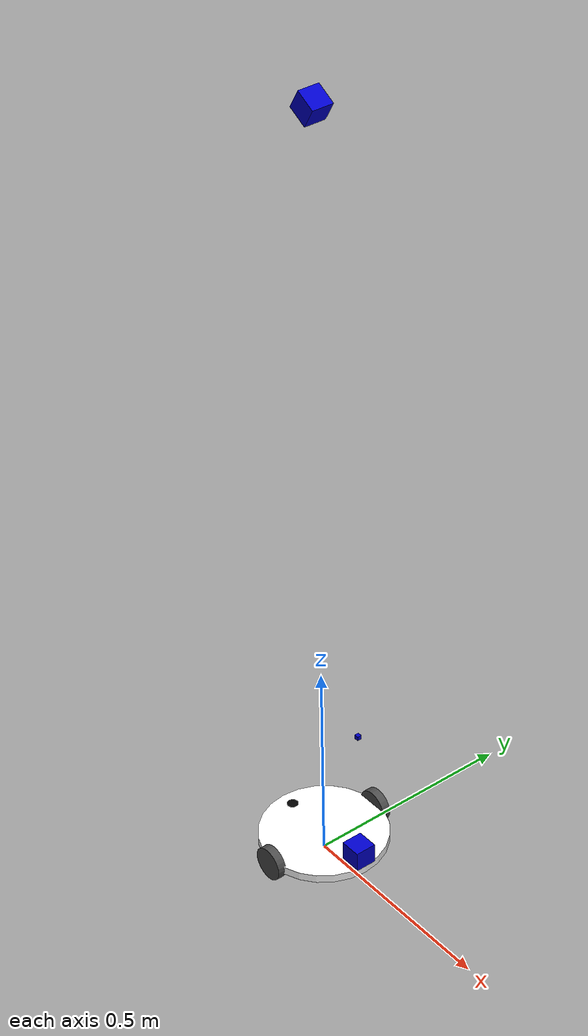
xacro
<?xml version="1.0"?>
<robot name="mando"
  xmlns:xacro="http://www.ros.org/wiki/xacro">
  <!-- Defining the colors used in this robot -->
  <material name="Black">
    <color rgba="0.0 0.0 0.0 1.0"/>
  </material>
  <material name="Red">
    <color rgba="0.8 0.0 0.0 1.0"/>
  </material>
  <material name="White">
    <color rgba="1.0 1.0 1.0 1.0"/>
  </material>
  <material name="Blue">
    <color rgba="0.0 0.0 0.8 1.0"/>
  </material>
  <!-- PROPERTY LIST -->
  <!--All units in m-kg-s-radians unit system -->
  <!-- Main body radius and height -->
  <!-- Main Body Cylinder base   -->
  <!-- in kg-->
  <!-- caster wheel radius and height -->
  <!-- caster wheel mass -->
  <!-- in kg-->
  <!-- caster wheel radius and height -->
  <!-- caster wheel mass -->
  <!-- in kg-->
  <!-- Wheels -->
  <!-- in kg-->
  <!-- Hokuyo Laser scanner -->
  <!-- Macro for calculating inertia of cylinder -->
  <!-- BASE-FOOTPRINT -->
  <!-- base_footprint is a fictitious link(frame) that is on the ground right below base_link origin -->
  <link name="base_footprint">
    <inertial>
      <mass value="0.0001"/>
      <origin xyz="0 0 0"/>
      <inertia ixx="0.0001" ixy="0.0" ixz="0.0" iyy="0.0001" iyz="0.0" izz="0.0001"/>
    </inertial>
    <visual>
      <origin rpy="0 0 0" xyz="0 0 0"/>
      <geometry>
        <box size="0.001 0.001 0.001"/>
      </geometry>
    </visual>
  </link>
  <joint name="base_footprint_joint" type="fixed">
    <origin rpy="0 0 0" xyz="0 0 0.04"/>
    <parent link="base_footprint"/>
    <child link="base_link"/>
  </joint>
  <!-- BASE-LINK -->
  <!--Actual body/chassis of the robot-->
  <link name="base_link">
    <inertial>
      <mass value="5"/>
      <origin xyz="0 0 0"/>
      <!--The 3x3 rotational inertia matrix. -->
      <inertia ixx="0.0282916666667" ixy="0" ixz="0" iyy="0.0282916666667" iyz="0" izz="0.05625"/>
    </inertial>
    <visual>
      <origin rpy="0 0 0" xyz="0 0 0"/>
      <geometry>
        <cylinder length="0.02" radius="0.15"/>
      </geometry>
      <material name="White"/>
    </visual>
    <collision>
      <origin rpy="0 0 0 " xyz="0 0 0"/>
      <geometry>
        <cylinder length="0.02" radius="0.15"/>
      </geometry>
    </collision>
  </link>

  <!--fb : front, back ; lr: left, right -->
  <link name="front_right_wheel">
    <visual>
      <origin rpy="1.57079632679 0  0 " xyz="0 0 0"/>
      <geometry>
        <cylinder length="0.02" radius="0.04"/>
      </geometry>
      <material name="DarkGray"/>
    </visual>
    <collision>
      <origin rpy="1.57079632679 0 0 " xyz="0 0 0"/>
      <geometry>
        <cylinder length="0.02" radius="0.04"/>
      </geometry>
    </collision>
    <inertial>
      <mass value="2.5"/>
      <origin xyz="0 0 0"/>
      <inertia ixx="0.00108333333333" ixy="0" ixz="0" iyy="0.00108333333333" iyz="0" izz="0.002"/>
    </inertial>
  </link>

  <joint name="front_right_wheel_joint" type="continuous">
    <parent link="base_link"/>
    <child link="front_right_wheel"/>
    <origin rpy="0 0 0" xyz="0.0 0.15 0.0"/>
    <axis rpy="0  0" xyz="0 1 0"/>
    <limit effort="100" velocity="100"/>
    <joint_properties damping="0.0" friction="0.0"/>
  </joint>
  <!-- Transmission is important to link the joints and the controller -->
  <transmission name="front_right_wheel_joint_trans">
    <type>transmission_interface/SimpleTransmission</type>
    <joint name="front_right_wheel_joint"/>
    <actuator name="front_right_wheel_joint_motor">
      <hardwareInterface>EffortJointInterface</hardwareInterface>
      <mechanicalReduction>1</mechanicalReduction>
    </actuator>
  </transmission>
  <!--fb : front, back ; lr: left, right -->
  <link name="front_left_wheel">
    <visual>
      <origin rpy="1.57079632679 0  0 " xyz="0 0 0"/>
      <geometry>
        <cylinder length="0.02" radius="0.04"/>
      </geometry>
      <material name="DarkGray"/>
    </visual>
    <collision>
      <origin rpy="1.57079632679 0 0 " xyz="0 0 0"/>
      <geometry>
        <cylinder length="0.02" radius="0.04"/>
      </geometry>
    </collision>
    <inertial>
      <mass value="2.5"/>
      <origin xyz="0 0 0"/>
      <inertia ixx="0.00108333333333" ixy="0" ixz="0" iyy="0.00108333333333" iyz="0" izz="0.002"/>
    </inertial>
  </link>

  <joint name="front_left_wheel_joint" type="continuous">
    <parent link="base_link"/>
    <child link="front_left_wheel"/>
    <origin rpy="0 0 0" xyz="0.0 -0.15 0.0"/>
    <axis rpy="0  0" xyz="0 1 0"/>
    <limit effort="100" velocity="100"/>
    <joint_properties damping="0.0" friction="0.0"/>
  </joint>
  <!-- Transmission is important to link the joints and the controller -->
  <transmission name="front_left_wheel_joint_trans">
    <type>transmission_interface/SimpleTransmission</type>
    <joint name="front_left_wheel_joint"/>
    <actuator name="front_left_wheel_joint_motor">
      <hardwareInterface>EffortJointInterface</hardwareInterface>
      <mechanicalReduction>1</mechanicalReduction>
    </actuator>
  </transmission>
  <!--Caster front  -->
  <link name="caster_front_link">
    <visual>
      <origin rpy="1.57079632679 0 0" xyz="0 0.02 0"/>
      <geometry>
        <sphere radius="0.025"/>
      </geometry>
      <material name="Black"/>
    </visual>
    <collision>
      <geometry>
        <sphere radius="0.025"/>
      </geometry>
      <origin rpy="1.57079632679 0 0" xyz="0 0.02 0"/>
    </collision>
    <inertial>
      <mass value="0.5"/>
      <origin xyz="0 0 0"/>
      <inertia ixx="0.001" ixy="0.0" ixz="0.0" iyy="0.001" iyz="0.0" izz="0.001"/>
    </inertial>
  </link>
  <joint name="caster_front_joint" type="fixed">
    <parent link="base_link"/>
    <child link="caster_front_link"/>
    <origin rpy="-1.57079632679 0 0" xyz="0.115 0.0 0.007"/>
  </joint>
  <!--Caster back  -->
  <link name="caster_back_link">
    <visual>
      <origin rpy="1.57079632679 0 0" xyz="0.02 0.02 0 "/>
      <geometry>
        <sphere radius="0.025"/>
      </geometry>
      <material name="Black"/>
    </visual>
    <collision>
      <geometry>
        <sphere radius="0.025"/>
      </geometry>
      <origin rpy="1.57079632679 0 0" xyz="0 0.02 0 "/>
    </collision>
    <inertial>
      <mass value="0.5"/>
      <origin xyz="0 0 0"/>
      <inertia ixx="0.001" ixy="0.0" ixz="0.0" iyy="0.001" iyz="0.0" izz="0.001"/>
    </inertial>
  </link>
  <joint name="caster_back_joint" type="fixed">
    <parent link="base_link"/>
    <child link="caster_back_link"/>
    <origin rpy="-1.57079632679 0 0" xyz="-0.135 0.0 0.009"/>
  </joint>

  <!-- SENSORS -->
  <!-- hokuyo -->
  <link name="hokuyo_link">
    <visual>
      <origin rpy="0 0 0" xyz="0 0 0"/>
      <geometry>
        <box size="0.05 0.05 0.05"/>
      </geometry>
      <material name="Blue"/>
    </visual>
  </link>
  <joint name="hokuyo_joint" type="fixed">
    <origin rpy="0 0 0" xyz="0.125 0 0.0325"/>
    <parent link="base_link"/>
    <child link="hokuyo_link"/>
  </joint>
  <!-- camera-->
  <link name="camera_link">
    <visual>
      <origin rpy="0 0 0" xyz="0 0 0"/>
      <geometry>
        <box size="0.05 0.05 0.05"/>
      </geometry>
      <material name="Blue"/>
    </visual>
  </link>
  <joint name="camera_joint" type="fixed">
    <origin rpy="0 0.523599 0" xyz="0.0 0 1.8288"/>
    <parent link="base_link"/>
    <child link="camera_link"/>
  </joint>
  <!-- imu -->
  <link name="imu_link">
    <visual>
      <origin rpy="0 0 0" xyz="0 0 0"/>
      <geometry>
        <box size="0.01 0.01 0.01"/>
      </geometry>
      <material name="Blue"/>
    </visual>
  </link>
  <joint name="imu_joint" type="fixed">
    <origin rpy="0 0 0" xyz="0.125 0 0.37"/>
    <parent link="base_link"/>
    <child link="imu_link"/>
  </joint>

  <!-- EVERYTHING RELATED TO GAZEBO-->

  <gazebo reference="base_footprint">
    <turnGravityOff>false</turnGravityOff>
  </gazebo>
  <gazebo reference="base_link">
    <material>Gazebo/White</material>
    <turnGravityOff>false</turnGravityOff>
  </gazebo>
  <gazebo reference="front_right_wheel">
    <mu1 value="1.0"/>
    <mu2 value="1.0"/>
    <kp value="10000000.0"/>
    <kd value="1.0"/>
    <fdir1 value="1 0 0"/>
    <material>Gazebo/Grey</material>
    <turnGravityOff>false</turnGravityOff>
  </gazebo>
  <gazebo reference="front_left_wheel">
    <mu1 value="1.0"/>
    <mu2 value="1.0"/>
    <kp value="10000000.0"/>
    <kd value="1.0"/>
    <fdir1 value="1 0 0"/>
    <material>Gazebo/Grey</material>
    <turnGravityOff>false</turnGravityOff>
  </gazebo>
  <gazebo reference="caster_front_link">
    <turnGravityOff>false</turnGravityOff>
  </gazebo>
  <gazebo reference="caster_back_link">
    <turnGravityOff>false</turnGravityOff>
  </gazebo>
  <gazebo reference="hokuyo_link">
    <material>Gazebo/Blue</material>
    <turnGravityOff>false</turnGravityOff>
    <sensor name="head_hokuyo_sensor" type="ray">
      <pose>0.025 0 0 0 0 0</pose>
      <visualize>true</visualize>
      <update_rate>25</update_rate>      <!-- choosen for SICK LMS111-->
      <ray>
        <scan>
          <horizontal>
            <samples>720</samples>
            <resolution>1</resolution>
            <min_angle>-2.35619</min_angle>
            <max_angle>2.35619</max_angle>
          </horizontal>
        </scan>
        <range>
          <min>0.5</min>
          <max>20.0</max>
          <resolution>0.001</resolution>
        </range>
      </ray>
      <plugin filename="libgazebo_ros_laser.so" name="gazebo_ros_head_hokuyo_controller">
        <topicName>/scan</topicName>
        <frameName>hokuyo_link</frameName>
      </plugin>
    </sensor>
  </gazebo>
  <!-- Differential drive controller  -->
  <gazebo>
    <plugin filename="libgazebo_ros_diff_drive.so" name="differential_drive_controller_front">
      <rosDebugLevel>Debug</rosDebugLevel>
      <publishWheelTF>True</publishWheelTF>
      <publishTf>1</publishTf>
      <publishWheelJointState>true</publishWheelJointState>
      <alwaysOn>true</alwaysOn>
      <updateRate>100.0</updateRate>
      <leftJoint>front_left_wheel_joint</leftJoint>
      <rightJoint>front_right_wheel_joint</rightJoint>
      <wheelSeparation>0.3</wheelSeparation>
      <wheelDiameter>0.08</wheelDiameter>
      <broadcastTF>1</broadcastTF>
      <wheelTorque>30</wheelTorque>
      <wheelAcceleration>1.8</wheelAcceleration>
      <commandTopic>cmd_vel</commandTopic>
      <odometryFrame>odom</odometryFrame>
      <odometryTopic>odom</odometryTopic>
      <robotBaseFrame>base_footprint</robotBaseFrame>
    </plugin>
  </gazebo>
  <gazebo reference="camera_link">
    <sensor type="camera" name="camera1">
      <update_rate>30.0</update_rate>
      <camera name="head">
        <horizontal_fov>1.396</horizontal_fov>
        <image>
          <width>800</width>
          <height>800</height>
          <format>R8G8B8</format>
        </image>
        <clip>
          <near>0.02</near>
          <far>300</far>
        </clip>
        <noise>
          <type>gaussian</type>
          <mean>0.0</mean>
          <stddev>0.007</stddev>
        </noise>
      </camera>
      <plugin name="camera_controller" filename="libgazebo_ros_camera.so">
        <alwaysOn>true</alwaysOn>
        <updateRate>0.0</updateRate>
        <cameraName>mando/camera</cameraName>
        <imageTopicName>image_raw</imageTopicName>
        <cameraInfoTopicName>camera_info</cameraInfoTopicName>
        <frameName>camera_link</frameName>
        <hackBaseline>0.07</hackBaseline>
        <distortionK1>0.0</distortionK1>
        <distortionK2>0.0</distortionK2>
        <distortionK3>0.0</distortionK3>
        <distortionT1>0.0</distortionT1>
        <distortionT2>0.0</distortionT2>
      </plugin>
    </sensor>
  </gazebo>
  <!-- gps-->
  <gazebo>
    <plugin name="novatel_gps_sim" filename="libhector_gazebo_ros_gps.so">
      <alwaysOn>1</alwaysOn>
      <updateRate>10.0</updateRate>
      <bodyName>base_link</bodyName>
      <topicName>gps</topicName>
      <velocityTopicName>gps_velocity</velocityTopicName>
      <drift>5.0 5.0 5.0</drift>
      <gaussianNoise>0.1 0.1 0.1</gaussianNoise>
      <velocityDrift>0 0 0</velocityDrift>
      <velocityGaussianNoise>0.1 0.1 0.1</velocityGaussianNoise>
    </plugin>
  </gazebo>
  <!-- imu -->
  <gazebo reference="imu_link">
    <gravity>true</gravity>
    <sensor name="imu_sensor" type="imu">
      <always_on>true</always_on>
      <update_rate>100.0</update_rate>
      <visualize>false</visualize>
      <topic>imu</topic>
      <plugin filename="libgazebo_ros_imu_sensor.so" name="imu_plugin">
        <topicName>imu</topicName>
        <bodyName>imu_link</bodyName>
        <updateRateHZ>100.0</updateRateHZ>
        <gaussianNoise>0.0</gaussianNoise>
        <xyzOffset>0 0 0</xyzOffset>
        <rpyOffset>0 0 0</rpyOffset>
        <frameName>imu_link</frameName>
      </plugin>
      <pose>0 0 0 0 0 0</pose>
    </sensor>
  </gazebo>
</robot>
